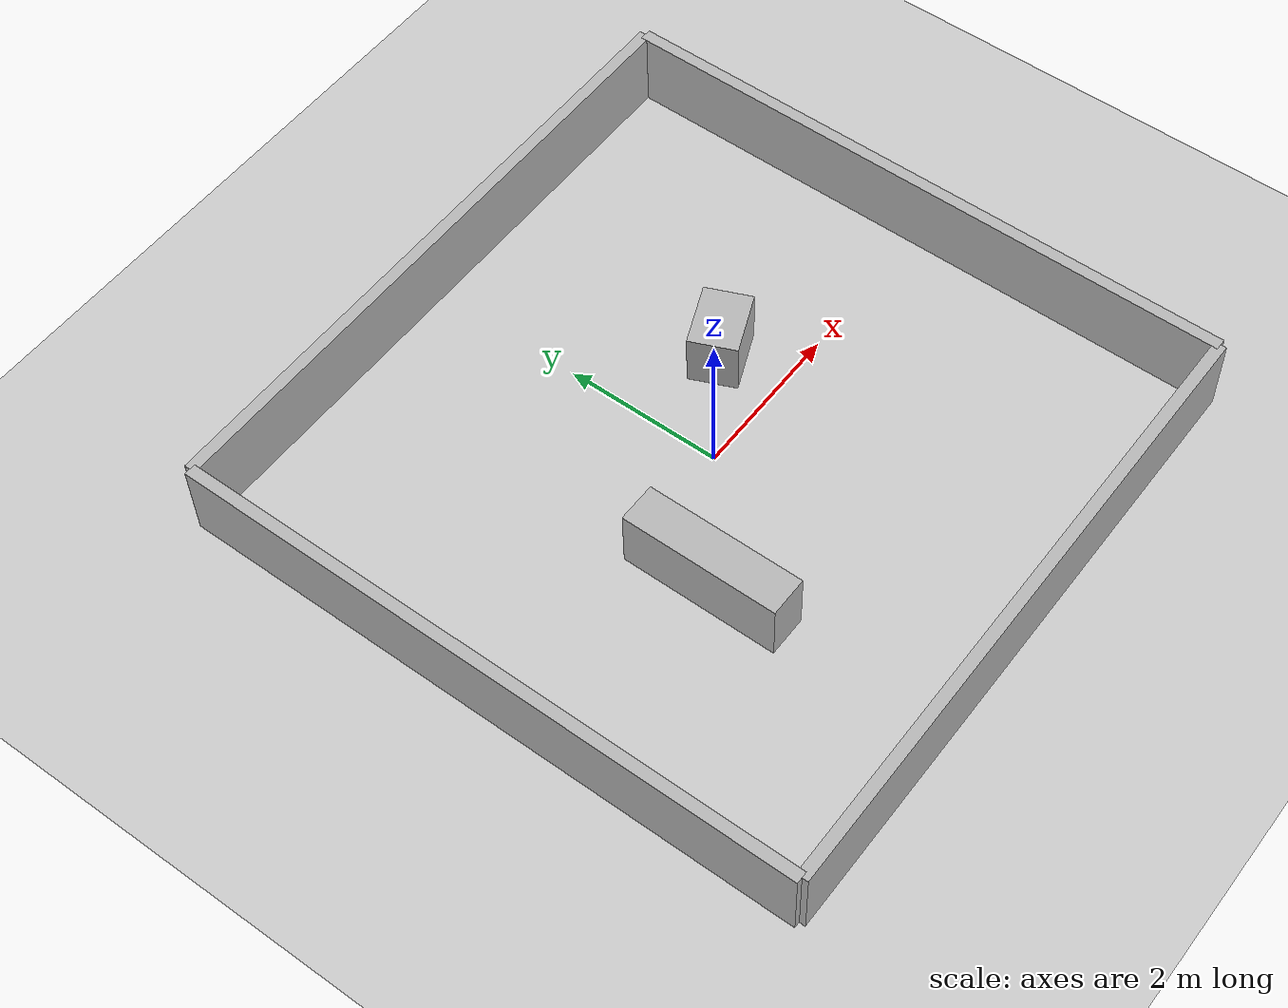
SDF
<?xml version="1.0" ?>
<sdf version="1.6">
  <world name="test_arena">

    <include>
      <uri>model://sun</uri>
    </include>

    <include>
      <uri>model://ground_plane</uri>
    </include>

    <physics name="default_physics" default="0" type="ode">
      <max_step_size>0.001</max_step_size>
      <real_time_factor>1.0</real_time_factor>
      <real_time_update_rate>1000</real_time_update_rate>
    </physics>

    <model name="wall_north">
      <static>true</static>
      <pose>0 4 0.5 0 0 0</pose>
      <link name="link">
        <collision name="collision">
          <geometry>
            <box><size>8 0.15 1.0</size></box>
          </geometry>
        </collision>
        <visual name="visual">
          <geometry>
            <box><size>8 0.15 1.0</size></box>
          </geometry>
        </visual>
      </link>
    </model>

    <model name="wall_south">
      <static>true</static>
      <pose>0 -4 0.5 0 0 0</pose>
      <link name="link">
        <collision name="collision">
          <geometry>
            <box><size>8 0.15 1.0</size></box>
          </geometry>
        </collision>
        <visual name="visual">
          <geometry>
            <box><size>8 0.15 1.0</size></box>
          </geometry>
        </visual>
      </link>
    </model>

    <model name="wall_east">
      <static>true</static>
      <pose>4 0 0.5 0 0 0</pose>
      <link name="link">
        <collision name="collision">
          <geometry>
            <box><size>0.15 8 1.0</size></box>
          </geometry>
        </collision>
        <visual name="visual">
          <geometry>
            <box><size>0.15 8 1.0</size></box>
          </geometry>
        </visual>
      </link>
    </model>

    <model name="wall_west">
      <static>true</static>
      <pose>-4 0 0.5 0 0 0</pose>
      <link name="link">
        <collision name="collision">
          <geometry>
            <box><size>0.15 8 1.0</size></box>
          </geometry>
        </collision>
        <visual name="visual">
          <geometry>
            <box><size>0.15 8 1.0</size></box>
          </geometry>
        </visual>
      </link>
    </model>

    <model name="center_box">
      <static>true</static>
      <pose>1.2 0.8 0.35 0 0 0.4</pose>
      <link name="link">
        <collision name="collision">
          <geometry>
            <box><size>0.8 0.6 0.7</size></box>
          </geometry>
        </collision>
        <visual name="visual">
          <geometry>
            <box><size>0.8 0.6 0.7</size></box>
          </geometry>
        </visual>
      </link>
    </model>

    <model name="long_obstacle">
      <static>true</static>
      <pose>-1.4 -1.0 0.4 0 0 0</pose>
      <link name="link">
        <collision name="collision">
          <geometry>
            <box><size>0.5 2.0 0.8</size></box>
          </geometry>
        </collision>
        <visual name="visual">
          <geometry>
            <box><size>0.5 2.0 0.8</size></box>
          </geometry>
        </visual>
      </link>
    </model>

  </world>
</sdf>
